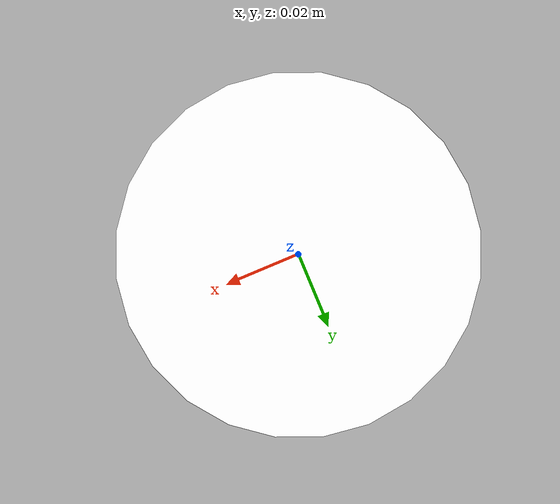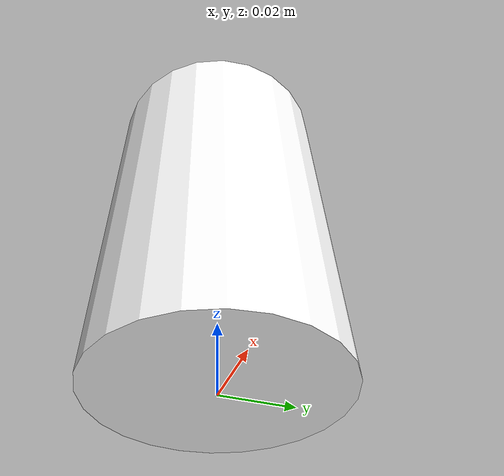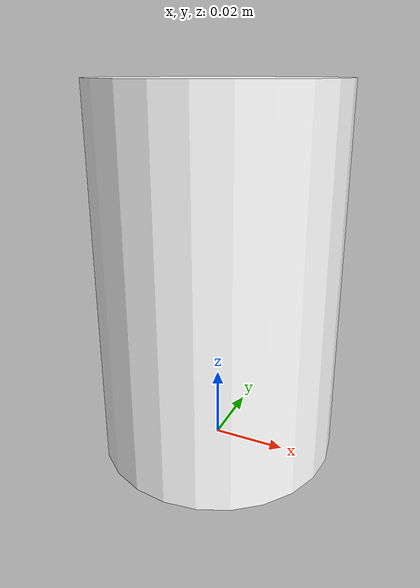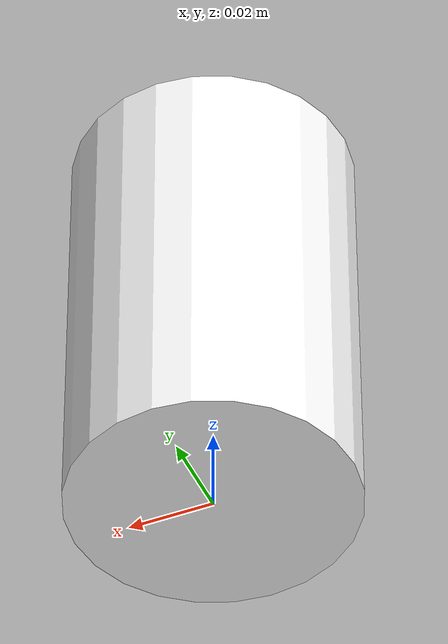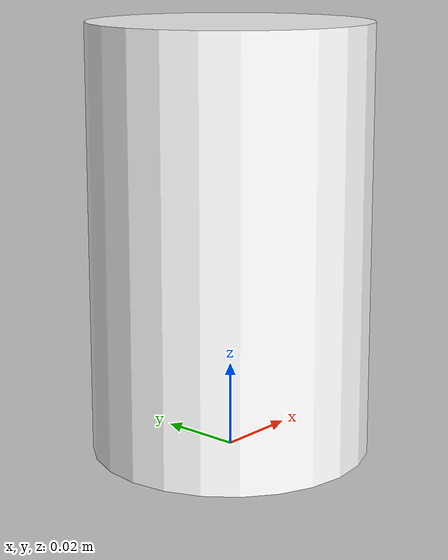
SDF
<?xml version="1.0"?>
<sdf version='1.6'>
<model name="soup_can">
  <link name="base_link_soup">
    <inertial>
      <pose frame=''>0 0 0.0505 0 0 0</pose>
      <mass>0.349</mass>
        <inertia>
          <ixx>0.000391694333333</ixx>
          <ixy>0</ixy>
          <ixz>0</ixz>
          <iyy>0.000391694333333</iyy>
          <iyz>0</iyz>
          <izz>0.0001900305</izz>
        </inertia>
    </inertial>
    <visual name='base_link_soup'>
      <pose frame=''>0 0 0.0505 0 0 0</pose>
      <geometry>
        <cylinder>
          <radius>0.033</radius>
          <length>0.101</length>
        </cylinder>
      </geometry>
      <material>
        <diffuse>1.0 1.0 1.0 1.0</diffuse>
      </material>
    </visual>

    <collision name='soup_can_collision'>
      <pose>0 0 0.0505 0 0 0</pose>
      <geometry>
        <cylinder>
          <radius>0.032</radius>
          <length>0.1</length>
        </cylinder>
      </geometry>
      <material>
        <diffuse>0 1 0 1.0</diffuse>
      </material>
    </collision>

    <collision name='point_collision1'>
      <pose>0.033 0 0 0 0 0</pose>
      <geometry>
        <sphere><radius>1e-7</radius></sphere>
      </geometry>
    </collision>

    <collision name='point_collision2'>
      <pose>0 0.033 0 0 0 0</pose>
      <geometry>
        <sphere><radius>1e-7</radius></sphere>
      </geometry>
    </collision>

    <collision name='point_collision3'>
      <pose>-0.033 0 0 0 0 0</pose>
      <geometry>
        <sphere><radius>1e-7</radius></sphere>
      </geometry>
    </collision>

    <collision name='point_collision4'>
      <pose>0 -0.033 0 0 0 0</pose>
      <geometry>
        <sphere><radius>1e-7</radius></sphere>
      </geometry>
    </collision>

    <collision name='point_collision5'>
      <pose>0.033 0 0.101 0 0 0</pose>
      <geometry>
        <sphere><radius>1e-7</radius></sphere>
      </geometry>
    </collision>

    <collision name='point_collision6'>
      <pose>0 0.033 0.101 0 0 0</pose>
      <geometry>
        <sphere><radius>1e-7</radius></sphere>
      </geometry>
    </collision>

    <collision name='point_collision7'>
      <pose>-0.033 0 0.101 0 0 0</pose>
      <geometry>
        <sphere><radius>1e-7</radius></sphere>
      </geometry>
    </collision>

    <collision name='point_collision8'>
      <pose>0 -0.033 0.101 0 0 0</pose>
      <geometry>
        <sphere><radius>1e-7</radius></sphere>
      </geometry>
    </collision>

   </link>
</model>
</sdf>
